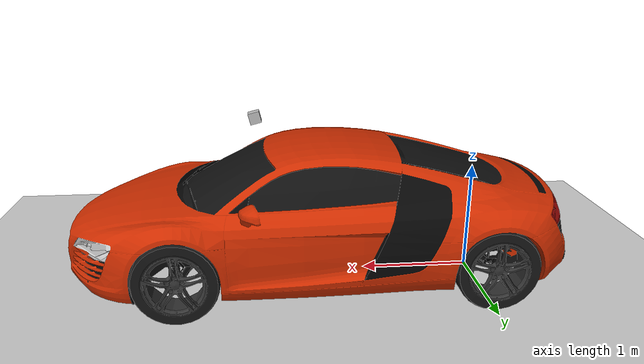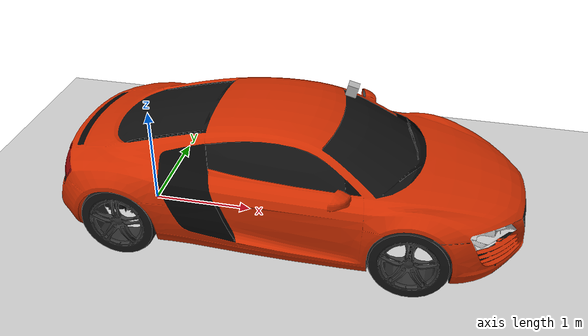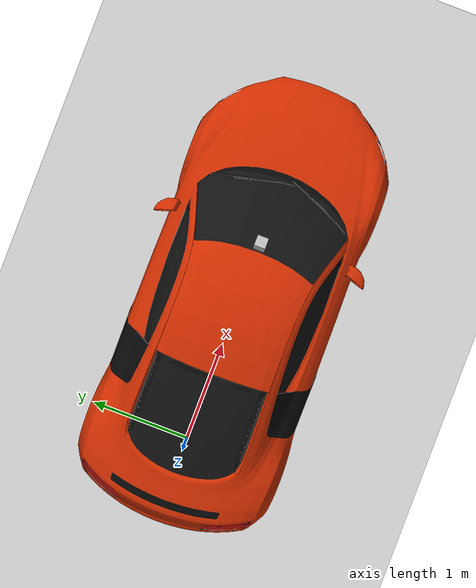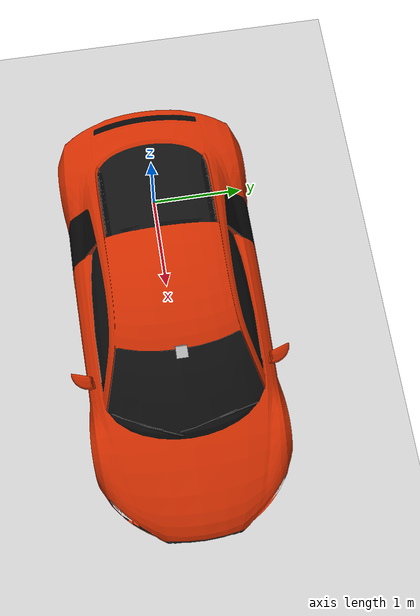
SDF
<?xml version="1.0"?>
<sdf version='1.11'>
  <world name='empty'>
    <physics name='1ms' type='ignored'>
      <max_step_size>0.001</max_step_size>
      <real_time_factor>1</real_time_factor>
      <real_time_update_rate>1000</real_time_update_rate>
    </physics>
    <plugin name='gz::sim::systems::Physics' filename='gz-sim-physics-system'/>
    <plugin name='gz::sim::systems::UserCommands' filename='gz-sim-user-commands-system'/>
    <plugin name='gz::sim::systems::SceneBroadcaster' filename='gz-sim-scene-broadcaster-system'/>
    <plugin name='gz::sim::systems::Contact' filename='gz-sim-contact-system'/>
    <plugin name='gz::sim::systems::Sensors' filename='gz-sim-sensors-system'>
      <render_engine>ogre</render_engine>
    </plugin>
    <plugin filename="gz-sim-imu-system" name="gz::sim::systems::Imu" />
    <gravity>0 0 -9.8</gravity>
    <magnetic_field>6e-06 2.3e-05 -4.2e-05</magnetic_field>
    <atmosphere type='adiabatic'/>

    <plugin filename="gz-sim-navsat-system" name="gz::sim::systems::NavSat"/>
    <spherical_coordinates>
      <surface_model>EARTH_WGS84</surface_model>
      <world_frame_orientation>ENU</world_frame_orientation>
      <latitude_deg>45.0</latitude_deg>
      <longitude_deg>-81.0</longitude_deg>
      <elevation>0.0</elevation>
      <heading_deg>0.0</heading_deg>
    </spherical_coordinates>

    <scene>
      <ambient>0.400000006 0.400000006 0.400000006 1</ambient>
      <background>0.699999988 0.699999988 0.699999988 1</background>
      <sky></sky>
      <shadows>false</shadows>
    </scene>
    <model name='ground_plane'>
      <static>true</static>
      <link name='link'>
        <collision name='collision'>
          <geometry>
            <plane>
              <normal>0 0 1</normal>
              <size>1000 1000</size>
            </plane>
          </geometry>
          <surface>
            <friction>
              <ode/>
            </friction>
            <bounce/>
            <contact/>
          </surface>
        </collision>
        <visual name='visual'>
          <geometry>
            <plane>
              <normal>0 0 1</normal>
              <size>1000 1000</size>
            </plane>
          </geometry>
          <material>
            <ambient>0.8 0.8 0.8 1</ambient>
            <diffuse>0.8 0.8 0.8 1</diffuse>
            <specular>0.8 0.8 0.8 1</specular>
          </material>
        </visual>
        <pose>0 0 0 0 -0 0</pose>
        <inertial>
          <pose>0 0 0 0 -0 0</pose>
          <mass>1</mass>
          <inertia>
            <ixx>1</ixx>
            <ixy>0</ixy>
            <ixz>0</ixz>
            <iyy>1</iyy>
            <iyz>0</iyz>
            <izz>1</izz>
          </inertia>
        </inertial>
        <enable_wind>false</enable_wind>
      </link>
      <pose>0 0 0 0 -0 0</pose>
      <self_collide>false</self_collide>
    </model>
    <light name='sun' type='directional'>
      <pose>0 0 10 0 -0 0</pose>
      <cast_shadows>true</cast_shadows>
      <intensity>1</intensity>
      <direction>-0.5 0.1 -0.9</direction>
      <diffuse>0.8 0.8 0.8 1</diffuse>
      <specular>0.2 0.2 0.2 1</specular>
      <attenuation>
        <range>1000</range>
        <linear>0.01</linear>
        <constant>0.90000000000000002</constant>
        <quadratic>0.001</quadratic>
      </attenuation>
      <spot>
        <inner_angle>0</inner_angle>
        <outer_angle>0</outer_angle>
        <falloff>0</falloff>
      </spot>
    </light>

    <model name="audibot">
      <self_collide>false</self_collide>
      <pose>0 0 0 0 0 0</pose>
      <include merge="true">
        <uri>package://audibot_description/models/orange_audibot</uri>
        <experimental:params>
          <sensor element_id="base_footprint::navsat_sensor" action="modify">
            <update_rate>5</update_rate>
            <topic>audibot/navsat</topic>
          </sensor>
          <sensor element_id="chassis::imu_sensor" action="modify">
            <update_rate>100</update_rate>
            <topic>audibot/imu</topic>
          </sensor>
          <sensor element_id="camera::camera_sensor" action="modify">
            <update_rate>30</update_rate>
            <topic>audibot/image_raw</topic>
          </sensor>
        </experimental:params>
      </include>
    </model>
  </world>
</sdf>

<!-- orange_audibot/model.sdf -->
<sdf version="1.11">
    <model name='orange_audibot'>
        <link name="base_footprint">
            <pose>0 0 0 0 0 0</pose>
            <sensor name="navsat_sensor" type="navsat">
                <always_on>1</always_on>
                <update_rate>1</update_rate>
                <topic>navsat</topic>
            </sensor>
        </link>

        <link name="chassis">
            <sensor name="imu_sensor" type="imu">
                <always_on>1</always_on>
                <update_rate>100</update_rate>
                <visualize>false</visualize>
                <topic>imu</topic>
            </sensor>
            <pose>0 0 0.36 0 0 0</pose>

            <visual name="visual_chassis">
                <pose>1.37 0 0.03 0 0 0</pose>
                <geometry>
                    <mesh>
                        <uri>package://audibot_description/models/orange_audibot/meshes/body.dae</uri>
                    </mesh>
                </geometry>
            </visual>
            <collision name="collision_chassis">
                <pose>1.37 0 0.03 0 0 0</pose>
                <geometry>
                    <mesh>
                        <uri>package://audibot_description/models/orange_audibot/meshes/body_collision.stl</uri>
                    </mesh>
                </geometry>
            </collision>

            <inertial>
                <pose>1.37 0 0.03 0 0 0</pose>
                <mass>1620.0</mass>
                <inertia>
                    <ixx>556.54</ixx>
                    <ixy>0</ixy>
                    <ixz>0</ixz>
                    <iyy>1819.6</iyy>
                    <iyz>0</iyz>
                    <izz>1954.3</izz>
                </inertia>
            </inertial>
        </link>

        <link name="wheel_rl">
            <pose>0.0 0.8 0.361 -1.57079632679 0 0</pose>
            <visual name="visual_wheel_rl">
                <pose>0 0 0 1.57079632679 3.1415926535 0</pose>
                <geometry>
                    <mesh>
                        <uri>package://audibot_description/models/orange_audibot/meshes/wheel.dae</uri>
                    </mesh>
                </geometry>
            </visual>
            <collision name="collision_wheel_rl">
                <geometry>
                    <cylinder>
                        <radius>0.36</radius>
                        <length>0.25</length>
                    </cylinder>
                </geometry>
            </collision>

            <inertial>
                <mass>40.0</mass>
                <inertia>
                    <ixx>1.5043</ixx>
                    <ixy>0</ixy>
                    <ixz>0</ixz>
                    <iyy>1.5043</iyy>
                    <iyz>0</iyz>
                    <izz>2.5920</izz>
                </inertia>
            </inertial>
        </link>
        <joint name="wheel_rl_joint" type="revolute">
            <parent>chassis</parent>
            <child>wheel_rl</child>
            <axis>
                <xyz>0 0 1</xyz>
                <limit>
                    <lower>-1.79769e+308</lower>
                    <upper>1.79769e+308</upper>
                </limit>
                <dynamics>
                    <damping>0.1</damping>
                    <spring_reference>0.0</spring_reference>
                    <spring_stiffness>0.0</spring_stiffness>
                </dynamics>
            </axis>
        </joint>

        <link name="wheel_rr">
            <pose>0.0 -0.8 0.361 -1.57079632679 0 0</pose>
            <visual name="visual_wheel_rr">
                <pose>0 0 0 1.57079632679 0 0</pose>
                <geometry>
                    <mesh>
                        <uri>package://audibot_description/models/orange_audibot/meshes/wheel.dae</uri>
                    </mesh>
                </geometry>
            </visual>
            <collision name="collision_wheel_rr">
                <geometry>
                    <cylinder>
                        <radius>0.36</radius>
                        <length>0.25</length>
                    </cylinder>
                </geometry>
            </collision>

            <inertial>
                <mass>40.0</mass>
                <inertia>
                    <ixx>1.5043</ixx>
                    <ixy>0</ixy>
                    <ixz>0</ixz>
                    <iyy>1.5043</iyy>
                    <iyz>0</iyz>
                    <izz>2.5920</izz>
                </inertia>
            </inertial>
        </link>
        <joint name="wheel_rr_joint" type="revolute">
            <parent>chassis</parent>
            <child>wheel_rr</child>
            <axis>
                <xyz>0 0 1</xyz>
                <limit>
                    <lower>-1.79769e+308</lower>
                    <upper>1.79769e+308</upper>
                </limit>
                <dynamics>
                    <damping>0.1</damping>
                    <spring_reference>0.0</spring_reference>
                    <spring_stiffness>0.0</spring_stiffness>
                </dynamics>
            </axis>
        </joint>

        <link name="wheel_fl">
            <pose>2.67 0.819 0.361 -1.57079632679 0 0</pose>
            <visual name="visual_wheel_fl">
                <pose>0 0 0 1.57079632679 3.1415926535 0</pose>
                <geometry>
                    <mesh>
                        <uri>package://audibot_description/models/orange_audibot/meshes/wheel.dae</uri>
                    </mesh>
                </geometry>
            </visual>
            <collision name="collision_wheel_fl">
                <geometry>
                    <cylinder>
                        <radius>0.36</radius>
                        <length>0.25</length>
                    </cylinder>
                </geometry>
            </collision>

            <inertial>
                <mass>40.0</mass>
                <inertia>
                    <ixx>1.5043</ixx>
                    <ixy>0</ixy>
                    <ixz>0</ixz>
                    <iyy>1.5043</iyy>
                    <iyz>0</iyz>
                    <izz>2.5920</izz>
                </inertia>
            </inertial>
        </link>
        <link name="steer_fl" >
            <pose>2.67 0.819 0.361 0 0 0</pose>
            <inertial>
                <mass>1.0</mass>
                <inertia>
                    <ixx>0.05</ixx>
                    <ixy>0</ixy>
                    <ixz>0</ixz>
                    <iyy>0.05</iyy>
                    <iyz>0</iyz>
                    <izz>0.05</izz>
                </inertia>
            </inertial>
        </link>

        <joint name="wheel_fl_joint" type="revolute">
            <parent>steer_fl</parent>
            <child>wheel_fl</child>
            <axis>
                <xyz>0 0 1</xyz>
                <limit>
                    <lower>-1.79769e+308</lower>
                    <upper>1.79769e+308</upper>
                </limit>
                <dynamics>
                    <damping>0.1</damping>
                    <spring_reference>0.0</spring_reference>
                    <spring_stiffness>0.0</spring_stiffness>
                </dynamics>
            </axis>
        </joint>

        <joint name="steer_fl_joint" type="revolute">
            <parent>chassis</parent>
            <child>steer_fl</child>
            <axis>
                <xyz>0 0 1</xyz>
                <limit>
                    <lower>-0.6</lower>
                    <upper>0.6</upper>
                </limit>
            </axis>
        </joint>

        <link name="wheel_fr">
            <pose>2.67 -0.819 0.361 -1.57079632679 0 0</pose>
            <visual name="visual_wheel_fr">
                <pose>0 0 0 1.57079632679 0 0</pose>
                <geometry>
                    <mesh>
                        <uri>package://audibot_description/models/orange_audibot/meshes/wheel.dae</uri>
                    </mesh>
                </geometry>
            </visual>
            <collision name="collision_wheel_fr">
                <geometry>
                    <cylinder>
                        <radius>0.36</radius>
                        <length>0.25</length>
                    </cylinder>
                </geometry>
            </collision>

            <inertial>
                <mass>40.0</mass>
                <inertia>
                    <ixx>1.5043</ixx>
                    <ixy>0</ixy>
                    <ixz>0</ixz>
                    <iyy>1.5043</iyy>
                    <iyz>0</iyz>
                    <izz>2.5920</izz>
                </inertia>
            </inertial>
        </link>
        <link name="steer_fr" >
            <pose>2.67 -0.819 0.361 0 0 0</pose>
            <inertial>
                <mass>1.0</mass>
                <inertia>
                    <ixx>0.05</ixx>
                    <ixy>0</ixy>
                    <ixz>0</ixz>
                    <iyy>0.05</iyy>
                    <iyz>0</iyz>
                    <izz>0.05</izz>
                </inertia>
            </inertial>
        </link>
        <link name="camera">
            <pose>2.0 0 1.5 0 0.25 0</pose>
            <inertial>
                <mass>0.1</mass>
                <inertia>
                    <ixx>0.000166667</ixx>
                    <iyy>0.000166667</iyy>
                    <izz>0.000166667</izz>
                </inertia>
            </inertial>
            <collision name="collision">
                <geometry>
                    <box>
                        <size>0.1 0.1 0.1</size>
                    </box>
                </geometry>
            </collision>
            <visual name="visual">
                <geometry>
                    <box>
                        <size>0.1 0.1 0.1</size>
                    </box>
                </geometry>
            </visual>
            <sensor name="camera_sensor" type="camera">
                <always_on>1</always_on>
                <update_rate>30</update_rate>
                <camera>
                    <horizontal_fov>1.047</horizontal_fov>
                    <image>
                        <width>640</width>
                        <height>480</height>
                        <format>R8G8B8</format>
                    </image>
                    <clip>
                        <near>0.5</near>
                        <far>1000</far>
                    </clip>
                    <optical_frame_id>camera_optical</optical_frame_id>
                </camera>
                <topic>image_raw</topic>
                <frame_id>camera</frame_id>
            </sensor>
        </link>
        <link name="camera_optical">
            <pose relative_to="camera">0 0 0 -1.570796326 0 -1.570796326</pose>
        </link>

        <joint name="wheel_fr_joint" type="revolute">
            <parent>steer_fr</parent>
            <child>wheel_fr</child>
            <axis>
                <xyz>0 0 1</xyz>
                <limit>
                    <lower>-1.79769e+308</lower>
                    <upper>1.79769e+308</upper>
                </limit>
                <dynamics>
                    <damping>0.1</damping>
                    <spring_reference>0.0</spring_reference>
                    <spring_stiffness>0.0</spring_stiffness>
                </dynamics>
            </axis>
        </joint>

        <joint name="steer_fr_joint" type="revolute">
            <parent>chassis</parent>
            <child>steer_fr</child>
            <axis>
                <xyz>0 0 1</xyz>
                <limit>
                    <lower>-0.6</lower>
                    <upper>0.6</upper>
                </limit>
            </axis>
        </joint>

        <joint name="chassis_joint" type="fixed">
            <parent>base_footprint</parent>
            <child>chassis</child>
        </joint>

        <joint name="camera_joint" type="fixed">
            <parent>chassis</parent>
            <child>camera</child>
        </joint>

        <joint name="camera_optical_joint" type="fixed">
            <parent>camera</parent>
            <child>camera_optical</child>
        </joint>

        <plugin filename="AudibotInterfacePlugin" name="audibot_gazebo::AudibotInterfacePlugin">
            <pub_tf>true</pub_tf>
            <pub_heading>true</pub_heading>
        </plugin>

        <plugin filename="gz-sim-joint-state-publisher-system" name="gz::sim::systems::JointStatePublisher">
            <topic>/model/audibot/joint_states</topic>
        </plugin>
    </model>
</sdf>
